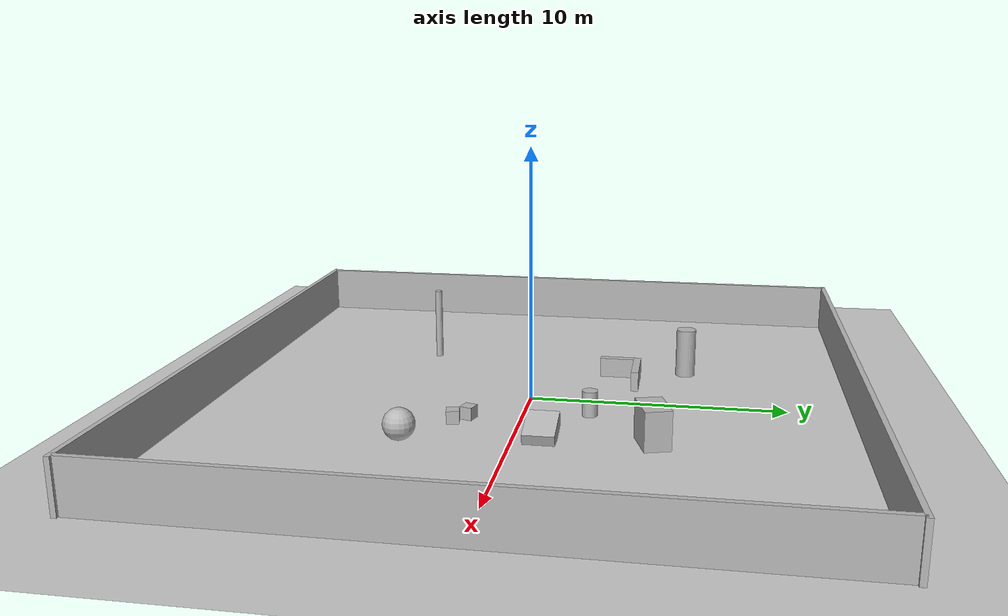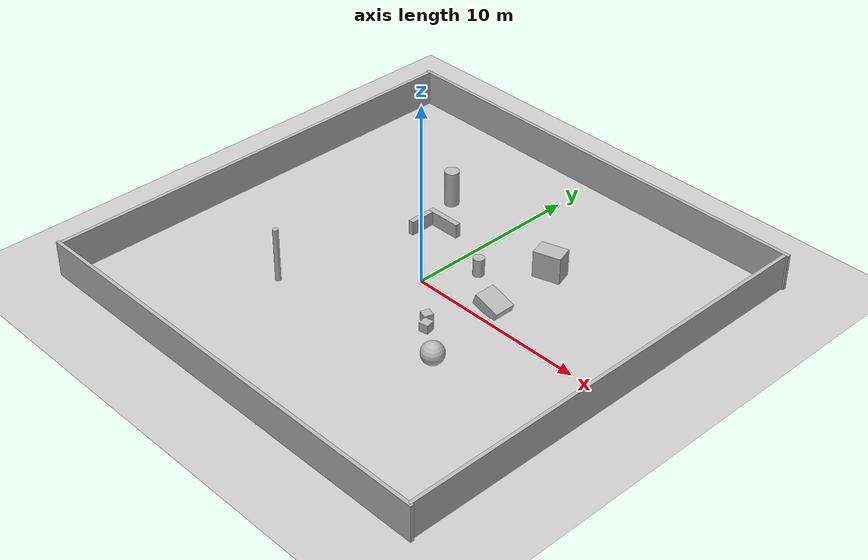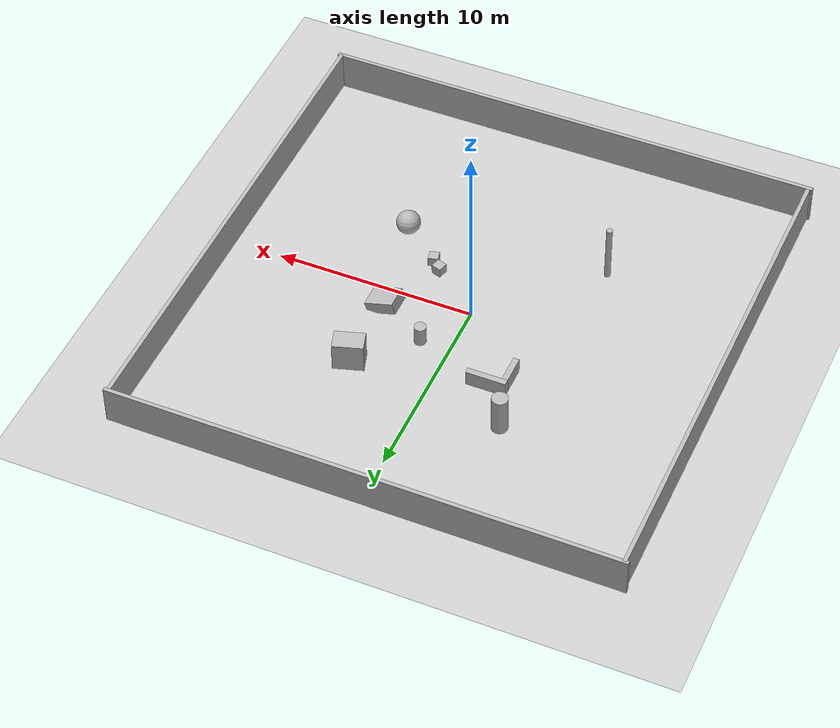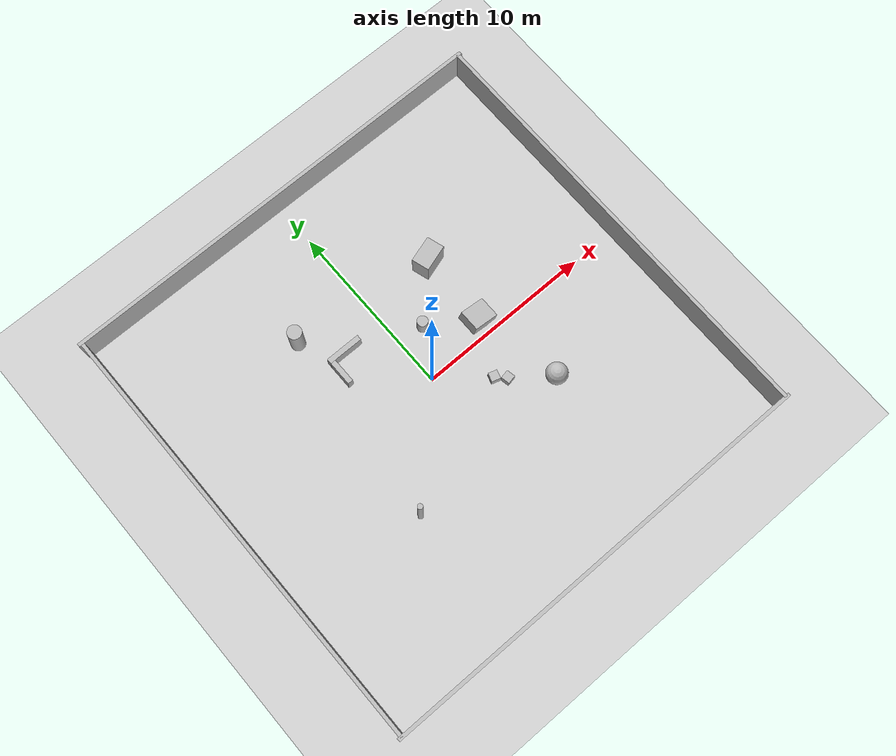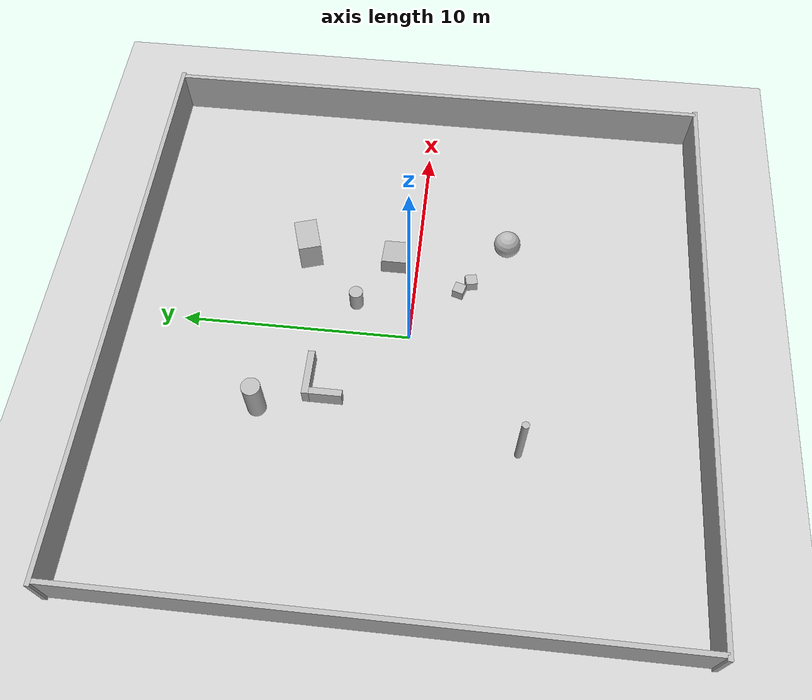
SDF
<?xml version="1.0" ?>
<sdf version='1.6'>
  <world name='gravel_experiment'>

    <!-- Gazebo State Publisher Plugin — unchanged -->
    <plugin name="gazebo_ros_state" filename="libgazebo_ros_state.so">
      <ros>
        <namespace></namespace>
        <remapping>model_states:=gazebo/model_states</remapping>
        <remapping>link_states:=gazebo/link_states</remapping>
      </ros>
      <update_rate>50.0</update_rate>
    </plugin>

    <include>
      <uri>model://sun</uri>
    </include>

    <include>
      <uri>model://ground_plane</uri>
    </include>

    <!-- Spherical coordinates — unchanged -->
    <spherical_coordinates>
      <surface_model>EARTH_WGS84</surface_model>
      <latitude_deg>37.4275</latitude_deg>
      <longitude_deg>-122.1697</longitude_deg>
      <elevation>0.0</elevation>
      <heading_deg>0.0</heading_deg>
    </spherical_coordinates>

    <!-- 25 × 25 m walled arena
         N/S walls: 25.4 m long (covers corners), centred at y = ±12.5
         E/W walls: 25.0 m long,                  centred at x = ±12.5   -->

    <!-- North Wall -->
    <model name="wall_north">
      <static>true</static>
      <pose>0 12.5 1 0 0 0</pose>
      <link name="link">
        <collision name="collision">
          <geometry><box><size>25.4 0.2 2</size></box></geometry>
        </collision>
        <visual name="visual">
          <geometry><box><size>25.4 0.2 2</size></box></geometry>
        </visual>
      </link>
    </model>

    <!-- South Wall -->
    <model name="wall_south">
      <static>true</static>
      <pose>0 -12.5 1 0 0 0</pose>
      <link name="link">
        <collision name="collision">
          <geometry><box><size>25.4 0.2 2</size></box></geometry>
        </collision>
        <visual name="visual">
          <geometry><box><size>25.4 0.2 2</size></box></geometry>
        </visual>
      </link>
    </model>

    <!-- East Wall -->
    <model name="wall_east">
      <static>true</static>
      <pose>12.5 0 1 0 0 0</pose>
      <link name="link">
        <collision name="collision">
          <geometry><box><size>0.2 25.0 2</size></box></geometry>
        </collision>
        <visual name="visual">
          <geometry><box><size>0.2 25.0 2</size></box></geometry>
        </visual>
      </link>
    </model>

    <!-- West Wall -->
    <model name="wall_west">
      <static>true</static>
      <pose>-12.5 0 1 0 0 0</pose>
      <link name="link">
        <collision name="collision">
          <geometry><box><size>0.2 25.0 2</size></box></geometry>
        </collision>
        <visual name="visual">
          <geometry><box><size>0.2 25.0 2</size></box></geometry>
        </visual>
      </link>
    </model>

    <!-- ── Static obstacles (unchanged from gravel.world) ────────────────── -->

    <!-- Large box — northeast quadrant -->
    <model name="large_box">
      <static>true</static>
      <pose>4 5 0.75 0 0 0.3</pose>
      <link name="link">
        <collision name="collision">
          <geometry><box><size>1.5 1 1.5</size></box></geometry>
        </collision>
        <visual name="visual">
          <geometry><box><size>1.5 1 1.5</size></box></geometry>
        </visual>
      </link>
    </model>

    <!-- Tall cylinder — northwest quadrant -->
    <model name="tall_pillar">
      <static>true</static>
      <pose>-4 6 1 0 0 0</pose>
      <link name="link">
        <collision name="collision">
          <geometry>
            <cylinder><radius>0.4</radius><length>2.0</length></cylinder>
          </geometry>
        </collision>
        <visual name="visual">
          <geometry>
            <cylinder><radius>0.4</radius><length>2.0</length></cylinder>
          </geometry>
        </visual>
      </link>
    </model>

    <!-- Sphere — southeast quadrant -->
    <model name="large_sphere">
      <static>true</static>
      <pose>5 -4 0.6 0 0 0</pose>
      <link name="link">
        <collision name="collision">
          <geometry><sphere><radius>0.6</radius></sphere></geometry>
        </collision>
        <visual name="visual">
          <geometry><sphere><radius>0.6</radius></sphere></geometry>
        </visual>
      </link>
    </model>

    <!-- Thin column — southwest quadrant -->
    <model name="thin_column">
      <static>true</static>
      <pose>-5 -5 1.5 0 0 0</pose>
      <link name="link">
        <collision name="collision">
          <geometry>
            <cylinder><radius>0.15</radius><length>3.0</length></cylinder>
          </geometry>
        </collision>
        <visual name="visual">
          <geometry>
            <cylinder><radius>0.15</radius><length>3.0</length></cylinder>
          </geometry>
        </visual>
      </link>
    </model>

    <!-- Small boxes cluster -->
    <model name="small_box_1">
      <static>true</static>
      <pose>3 -2.5 0.25 0 0 0.2</pose>
      <link name="link">
        <collision name="collision">
          <geometry><box><size>0.5 0.5 0.5</size></box></geometry>
        </collision>
        <visual name="visual">
          <geometry><box><size>0.5 0.5 0.5</size></box></geometry>
        </visual>
      </link>
    </model>

    <model name="small_box_2">
      <static>true</static>
      <pose>2.5 -2 0.25 0 0 -0.3</pose>
      <link name="link">
        <collision name="collision">
          <geometry><box><size>0.5 0.5 0.5</size></box></geometry>
        </collision>
        <visual name="visual">
          <geometry><box><size>0.5 0.5 0.5</size></box></geometry>
        </visual>
      </link>
    </model>

    <!-- L-shaped obstacle -->
    <model name="l_obstacle_1">
      <static>true</static>
      <pose>-2.5 4 0.4 0 0 0</pose>
      <link name="link">
        <collision name="collision">
          <geometry><box><size>2.0 0.3 0.8</size></box></geometry>
        </collision>
        <visual name="visual">
          <geometry><box><size>2.0 0.3 0.8</size></box></geometry>
        </visual>
      </link>
    </model>

    <model name="l_obstacle_2">
      <static>true</static>
      <pose>-3.35 3.15 0.4 0 0 0</pose>
      <link name="link">
        <collision name="collision">
          <geometry><box><size>0.3 1.4 0.8</size></box></geometry>
        </collision>
        <visual name="visual">
          <geometry><box><size>0.3 1.4 0.8</size></box></geometry>
        </visual>
      </link>
    </model>

    <!-- Angled ramp -->
    <model name="angled_ramp">
      <static>true</static>
      <pose>4 1 0.3 0 0.3 0</pose>
      <link name="link">
        <collision name="collision">
          <geometry><box><size>1.5 1.2 0.6</size></box></geometry>
        </collision>
        <visual name="visual">
          <geometry><box><size>1.5 1.2 0.6</size></box></geometry>
        </visual>
      </link>
    </model>

    <!-- Medium cylinder — near centre, offset -->
    <model name="medium_pillar">
      <static>true</static>
      <pose>1.5 2.5 0.5 0 0 0</pose>
      <link name="link">
        <collision name="collision">
          <geometry>
            <cylinder><radius>0.3</radius><length>1.0</length></cylinder>
          </geometry>
        </collision>
        <visual name="visual">
          <geometry>
            <cylinder><radius>0.3</radius><length>1.0</length></cylinder>
          </geometry>
        </visual>
      </link>
    </model>

    <gui fullscreen='0'>
      <camera name='user_camera'>
        <pose frame=''>25.0 -30.0 15.0 0.0 0.45 2.4</pose>
        <view_controller>orbit</view_controller>
        <projection_type>perspective</projection_type>
      </camera>
    </gui>

  </world>
</sdf>
